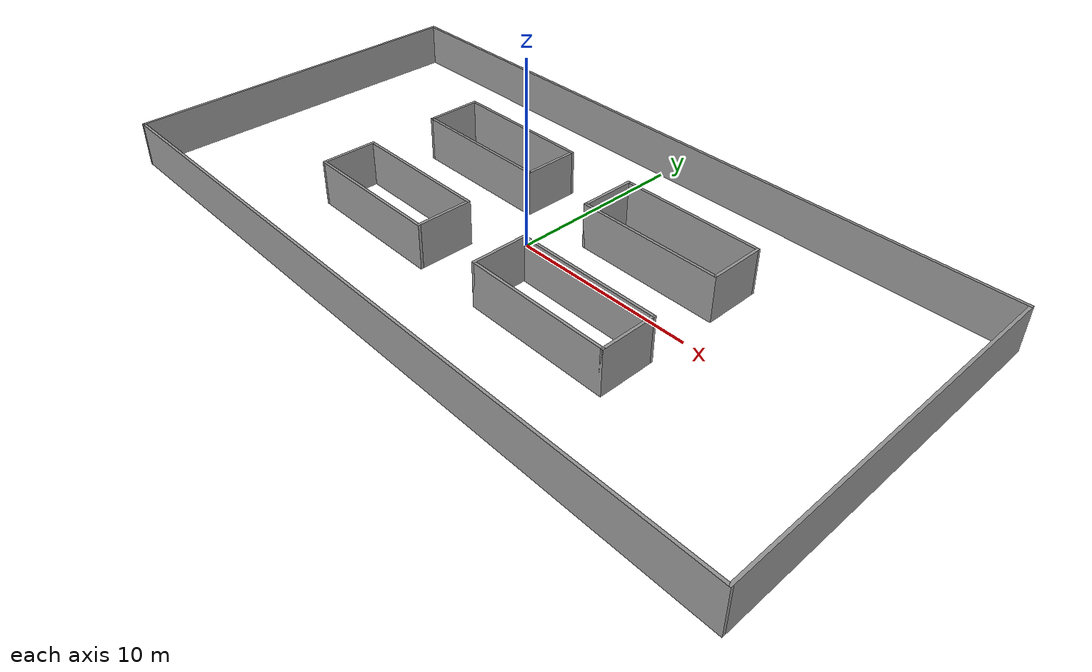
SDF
<?xml version='1.0'?>
<sdf version='1.6'>
  <model name='Simmetric_env'>
    <pose frame=''>0 0 0 0 -0 0</pose>
    <link name='Wall_17'>
      <collision name='Wall_17_Collision'>
        <geometry>
          <box>
            <size>20.15 0.15 2.5</size>
          </box>
        </geometry>
        <pose frame=''>0 0 1.25 0 -0 0</pose>
      </collision>
      <visual name='Wall_17_Visual'>
        <pose frame=''>0 0 1.25 0 -0 0</pose>
        <geometry>
          <box>
            <size>20.15 0.15 2.5</size>
          </box>
        </geometry>
        <material>
          <script>
            <uri>file://media/materials/scripts/gazebo.material</uri>
            <name>Gazebo/Grey</name>
          </script>
          <ambient>1 1 1 1</ambient>
        </material>
      </visual>
      <pose frame=''>20 0 0 0 0 -1.5708</pose>
    </link>
    <link name='Wall_19'>
      <collision name='Wall_19_Collision'>
        <geometry>
          <box>
            <size>20.15 0.15 2.5</size>
          </box>
        </geometry>
        <pose frame=''>0 0 1.25 0 -0 0</pose>
      </collision>
      <visual name='Wall_19_Visual'>
        <pose frame=''>0 0 1.25 0 -0 0</pose>
        <geometry>
          <box>
            <size>20.15 0.15 2.5</size>
          </box>
        </geometry>
        <material>
          <script>
            <uri>file://media/materials/scripts/gazebo.material</uri>
            <name>Gazebo/Grey</name>
          </script>
          <ambient>1 1 1 1</ambient>
        </material>
      </visual>
      <pose frame=''>-20 0 0 0 0 -1.5708</pose>
    </link>
    <link name='Wall_21'>
      <collision name='Wall_21_Collision'>
        <geometry>
          <box>
            <size>40.15 0.15 2.5</size>
          </box>
        </geometry>
        <pose frame=''>0 0 1.25 0 -0 0</pose>
      </collision>
      <visual name='Wall_21_Visual'>
        <pose frame=''>0 0 1.25 0 -0 0</pose>
        <geometry>
          <box>
            <size>40.15 0.15 2.5</size>
          </box>
        </geometry>
        <material>
          <script>
            <uri>file://media/materials/scripts/gazebo.material</uri>
            <name>Gazebo/Grey</name>
          </script>
          <ambient>1 1 1 1</ambient>
        </material>
      </visual>
      <pose frame=''>0 10 0 0 -0 0</pose>
    </link>
    <link name='Wall_23'>
      <collision name='Wall_23_Collision'>
        <geometry>
          <box>
            <size>40.15 0.15 2.5</size>
          </box>
        </geometry>
        <pose frame=''>0 0 1.25 0 -0 0</pose>
      </collision>
      <visual name='Wall_23_Visual'>
        <pose frame=''>0 0 1.25 0 -0 0</pose>
        <geometry>
          <box>
            <size>40.15 0.15 2.5</size>
          </box>
        </geometry>
        <material>
          <script>
            <uri>file://media/materials/scripts/gazebo.material</uri>
            <name>Gazebo/Grey</name>
          </script>
          <ambient>1 1 1 1</ambient>
        </material>
      </visual>
      <pose frame=''>0 -10 0 0 -0 0</pose>
    </link>
    <link name='Wall_28'>
      <collision name='Wall_28_Collision'>
        <geometry>
          <box>
            <size>0.15 0.15 2.5</size>
          </box>
        </geometry>
        <pose frame=''>0 0 1.25 0 -0 0</pose>
      </collision>
      <visual name='Wall_28_Visual'>
        <pose frame=''>0 0 1.25 0 -0 0</pose>
        <geometry>
          <box>
            <size>0.15 0.15 2.5</size>
          </box>
        </geometry>
        <material>
          <script>
            <uri>file://media/materials/scripts/gazebo.material</uri>
            <name>Gazebo/Grey</name>
          </script>
          <ambient>1 1 1 1</ambient>
        </material>
      </visual>
      <pose frame=''>-2 2 0 0 -0 0</pose>
    </link>
    <link name='Wall_33'>
      <collision name='Wall_33_Collision'>
        <geometry>
          <box>
            <size>3.15 0.15 2.5</size>
          </box>
        </geometry>
        <pose frame=''>0 0 1.25 0 -0 0</pose>
      </collision>
      <visual name='Wall_33_Visual'>
        <pose frame=''>0 0 1.25 0 -0 0</pose>
        <geometry>
          <box>
            <size>3.15 0.15 2.5</size>
          </box>
        </geometry>
        <material>
          <script>
            <uri>file://media/materials/scripts/gazebo.material</uri>
            <name>Gazebo/Grey</name>
          </script>
          <ambient>1 1 1 1</ambient>
        </material>
      </visual>
      <pose frame=''>2 3.5 0 0 -0 1.5708</pose>
    </link>
    <link name='Wall_36'>
      <collision name='Wall_36_Collision'>
        <geometry>
          <box>
            <size>3.15 0.15 2.5</size>
          </box>
        </geometry>
        <pose frame=''>0 0 1.25 0 -0 0</pose>
      </collision>
      <visual name='Wall_36_Visual'>
        <pose frame=''>0 0 1.25 0 -0 0</pose>
        <geometry>
          <box>
            <size>3.15 0.15 2.5</size>
          </box>
        </geometry>
        <material>
          <script>
            <uri>file://media/materials/scripts/gazebo.material</uri>
            <name>Gazebo/Grey</name>
          </script>
          <ambient>1 1 1 1</ambient>
        </material>
      </visual>
      <pose frame=''>-2 -3.5 0 0 0 -1.5708</pose>
    </link>
    <link name='Wall_43'>
      <collision name='Wall_43_Collision'>
        <geometry>
          <box>
            <size>3.15 0.15 2.5</size>
          </box>
        </geometry>
        <pose frame=''>0 0 1.25 0 -0 0</pose>
      </collision>
      <visual name='Wall_43_Visual'>
        <pose frame=''>0 0 1.25 0 -0 0</pose>
        <geometry>
          <box>
            <size>3.15 0.15 2.5</size>
          </box>
        </geometry>
        <material>
          <script>
            <uri>file://media/materials/scripts/gazebo.material</uri>
            <name>Gazebo/Grey</name>
          </script>
          <ambient>1 1 1 1</ambient>
        </material>
      </visual>
      <pose frame=''>2 -3.5 0 0 0 -1.5708</pose>
    </link>
    <link name='Wall_47'>
      <collision name='Wall_47_Collision'>
        <geometry>
          <box>
            <size>3.15 0.15 2.5</size>
          </box>
        </geometry>
        <pose frame=''>0 0 1.25 0 -0 0</pose>
      </collision>
      <visual name='Wall_47_Visual'>
        <pose frame=''>0 0 1.25 0 -0 0</pose>
        <geometry>
          <box>
            <size>3.15 0.15 2.5</size>
          </box>
        </geometry>
        <material>
          <script>
            <uri>file://media/materials/scripts/gazebo.material</uri>
            <name>Gazebo/Grey</name>
          </script>
          <ambient>1 1 1 1</ambient>
        </material>
      </visual>
      <pose frame=''>-2 3.5 0 0 -0 1.5708</pose>
    </link>
    <link name='Wall_48'>
      <collision name='Wall_48_Collision'>
        <geometry>
          <box>
            <size>8 0.15 2.5</size>
          </box>
        </geometry>
        <pose frame=''>0 0 1.25 0 -0 0</pose>
      </collision>
      <visual name='Wall_48_Visual'>
        <pose frame=''>0 0 1.25 0 -0 0</pose>
        <geometry>
          <box>
            <size>8 0.15 2.5</size>
          </box>
        </geometry>
        <material>
          <script>
            <uri>file://media/materials/scripts/gazebo.material</uri>
            <name>Gazebo/Grey</name>
          </script>
          <ambient>1 1 1 1</ambient>
        </material>
      </visual>
      <pose frame=''>-5.925 5 0 0 -0 3.14159</pose>
    </link>
    <link name='Wall_50'>
      <collision name='Wall_50_Collision'>
        <geometry>
          <box>
            <size>8 0.15 2.5</size>
          </box>
        </geometry>
        <pose frame=''>0 0 1.25 0 -0 0</pose>
      </collision>
      <visual name='Wall_50_Visual'>
        <pose frame=''>0 0 1.25 0 -0 0</pose>
        <geometry>
          <box>
            <size>8 0.15 2.5</size>
          </box>
        </geometry>
        <material>
          <script>
            <uri>file://media/materials/scripts/gazebo.material</uri>
            <name>Gazebo/Grey</name>
          </script>
          <ambient>1 1 1 1</ambient>
        </material>
      </visual>
      <pose frame=''>-5.925 2 0 0 -0 3.14159</pose>
    </link>
    <link name='Wall_51'>
      <collision name='Wall_51_Collision'>
        <geometry>
          <box>
            <size>3.15 0.15 2.5</size>
          </box>
        </geometry>
        <pose frame=''>0 0 1.25 0 -0 0</pose>
      </collision>
      <visual name='Wall_51_Visual'>
        <pose frame=''>0 0 1.25 0 -0 0</pose>
        <geometry>
          <box>
            <size>3.15 0.15 2.5</size>
          </box>
        </geometry>
        <material>
          <script>
            <uri>file://media/materials/scripts/gazebo.material</uri>
            <name>Gazebo/Grey</name>
          </script>
          <ambient>1 1 1 1</ambient>
        </material>
      </visual>
      <pose frame=''>-9.85 3.5 0 0 -0 1.5708</pose>
    </link>
    <link name='Wall_53'>
      <collision name='Wall_53_Collision'>
        <geometry>
          <box>
            <size>8 0.15 2.5</size>
          </box>
        </geometry>
        <pose frame=''>0 0 1.25 0 -0 0</pose>
      </collision>
      <visual name='Wall_53_Visual'>
        <pose frame=''>0 0 1.25 0 -0 0</pose>
        <geometry>
          <box>
            <size>8 0.15 2.5</size>
          </box>
        </geometry>
        <material>
          <script>
            <uri>file://media/materials/scripts/gazebo.material</uri>
            <name>Gazebo/Grey</name>
          </script>
          <ambient>1 1 1 1</ambient>
        </material>
      </visual>
      <pose frame=''>5.925 5 0 0 -0 0</pose>
    </link>
    <link name='Wall_55'>
      <collision name='Wall_55_Collision'>
        <geometry>
          <box>
            <size>8 0.15 2.5</size>
          </box>
        </geometry>
        <pose frame=''>0 0 1.25 0 -0 0</pose>
      </collision>
      <visual name='Wall_55_Visual'>
        <pose frame=''>0 0 1.25 0 -0 0</pose>
        <geometry>
          <box>
            <size>8 0.15 2.5</size>
          </box>
        </geometry>
        <material>
          <script>
            <uri>file://media/materials/scripts/gazebo.material</uri>
            <name>Gazebo/Grey</name>
          </script>
          <ambient>1 1 1 1</ambient>
        </material>
      </visual>
      <pose frame=''>5.925 2 0 0 -0 0</pose>
    </link>
    <link name='Wall_56'>
      <collision name='Wall_56_Collision'>
        <geometry>
          <box>
            <size>3.15 0.15 2.5</size>
          </box>
        </geometry>
        <pose frame=''>0 0 1.25 0 -0 0</pose>
      </collision>
      <visual name='Wall_56_Visual'>
        <pose frame=''>0 0 1.25 0 -0 0</pose>
        <geometry>
          <box>
            <size>3.15 0.15 2.5</size>
          </box>
        </geometry>
        <material>
          <script>
            <uri>file://media/materials/scripts/gazebo.material</uri>
            <name>Gazebo/Grey</name>
          </script>
          <ambient>1 1 1 1</ambient>
        </material>
      </visual>
      <pose frame=''>9.85 3.5 0 0 -0 1.5708</pose>
    </link>
    <link name='Wall_58'>
      <collision name='Wall_58_Collision'>
        <geometry>
          <box>
            <size>8 0.15 2.5</size>
          </box>
        </geometry>
        <pose frame=''>0 0 1.25 0 -0 0</pose>
      </collision>
      <visual name='Wall_58_Visual'>
        <pose frame=''>0 0 1.25 0 -0 0</pose>
        <geometry>
          <box>
            <size>8 0.15 2.5</size>
          </box>
        </geometry>
        <material>
          <script>
            <uri>file://media/materials/scripts/gazebo.material</uri>
            <name>Gazebo/Grey</name>
          </script>
          <ambient>1 1 1 1</ambient>
        </material>
      </visual>
      <pose frame=''>-5.925 -2 0 0 -0 3.14159</pose>
    </link>
    <link name='Wall_60'>
      <collision name='Wall_60_Collision'>
        <geometry>
          <box>
            <size>8 0.15 2.5</size>
          </box>
        </geometry>
        <pose frame=''>0 0 1.25 0 -0 0</pose>
      </collision>
      <visual name='Wall_60_Visual'>
        <pose frame=''>0 0 1.25 0 -0 0</pose>
        <geometry>
          <box>
            <size>8 0.15 2.5</size>
          </box>
        </geometry>
        <material>
          <script>
            <uri>file://media/materials/scripts/gazebo.material</uri>
            <name>Gazebo/Grey</name>
          </script>
          <ambient>1 1 1 1</ambient>
        </material>
      </visual>
      <pose frame=''>-5.925 -5 0 0 -0 3.14159</pose>
    </link>
    <link name='Wall_61'>
      <collision name='Wall_61_Collision'>
        <geometry>
          <box>
            <size>3.15 0.15 2.5</size>
          </box>
        </geometry>
        <pose frame=''>0 0 1.25 0 -0 0</pose>
      </collision>
      <visual name='Wall_61_Visual'>
        <pose frame=''>0 0 1.25 0 -0 0</pose>
        <geometry>
          <box>
            <size>3.15 0.15 2.5</size>
          </box>
        </geometry>
        <material>
          <script>
            <uri>file://media/materials/scripts/gazebo.material</uri>
            <name>Gazebo/Grey</name>
          </script>
          <ambient>1 1 1 1</ambient>
        </material>
      </visual>
      <pose frame=''>-9.85 -3.5 0 0 -0 1.5708</pose>
    </link>
    <link name='Wall_63'>
      <collision name='Wall_63_Collision'>
        <geometry>
          <box>
            <size>8 0.15 2.5</size>
          </box>
        </geometry>
        <pose frame=''>0 0 1.25 0 -0 0</pose>
      </collision>
      <visual name='Wall_63_Visual'>
        <pose frame=''>0 0 1.25 0 -0 0</pose>
        <geometry>
          <box>
            <size>8 0.15 2.5</size>
          </box>
        </geometry>
        <material>
          <script>
            <uri>file://media/materials/scripts/gazebo.material</uri>
            <name>Gazebo/Grey</name>
          </script>
          <ambient>1 1 1 1</ambient>
        </material>
      </visual>
      <pose frame=''>5.925 -2 0 0 -0 0</pose>
    </link>
    <link name='Wall_65'>
      <collision name='Wall_65_Collision'>
        <geometry>
          <box>
            <size>8 0.15 2.5</size>
          </box>
        </geometry>
        <pose frame=''>0 0 1.25 0 -0 0</pose>
      </collision>
      <visual name='Wall_65_Visual'>
        <pose frame=''>0 0 1.25 0 -0 0</pose>
        <geometry>
          <box>
            <size>8 0.15 2.5</size>
          </box>
        </geometry>
        <material>
          <script>
            <uri>file://media/materials/scripts/gazebo.material</uri>
            <name>Gazebo/Grey</name>
          </script>
          <ambient>1 1 1 1</ambient>
        </material>
      </visual>
      <pose frame=''>5.925 -5 0 0 -0 0</pose>
    </link>
    <link name='Wall_66'>
      <collision name='Wall_66_Collision'>
        <geometry>
          <box>
            <size>3.15 0.15 2.5</size>
          </box>
        </geometry>
        <pose frame=''>0 0 1.25 0 -0 0</pose>
      </collision>
      <visual name='Wall_66_Visual'>
        <pose frame=''>0 0 1.25 0 -0 0</pose>
        <geometry>
          <box>
            <size>3.15 0.15 2.5</size>
          </box>
        </geometry>
        <material>
          <script>
            <uri>file://media/materials/scripts/gazebo.material</uri>
            <name>Gazebo/Grey</name>
          </script>
          <ambient>1 1 1 1</ambient>
        </material>
      </visual>
      <pose frame=''>9.85 -3.5 0 0 -0 1.5708</pose>
    </link>
    <static>1</static>
  </model>
</sdf>
